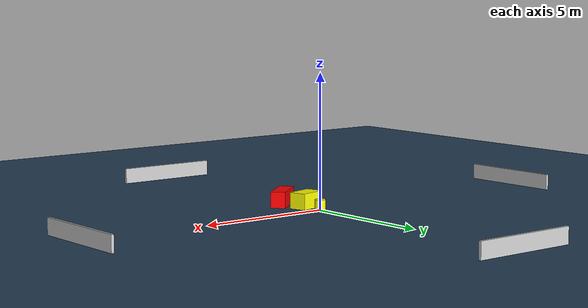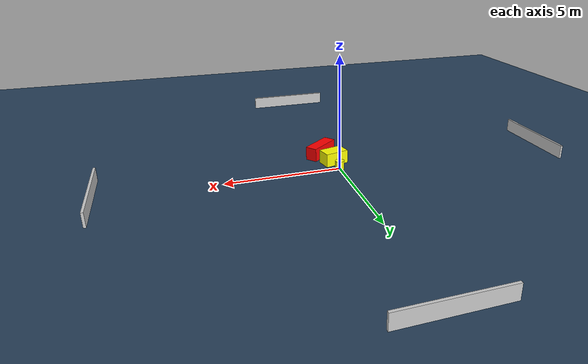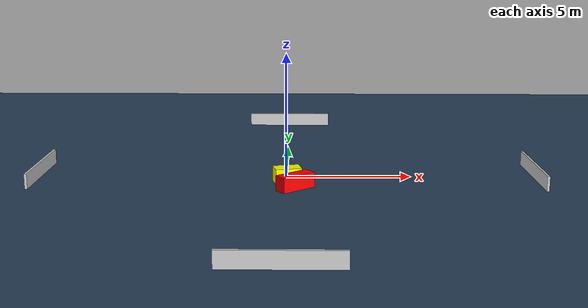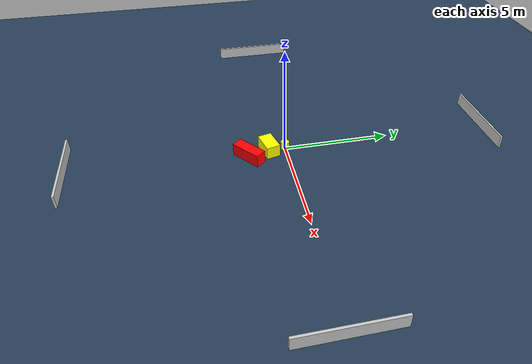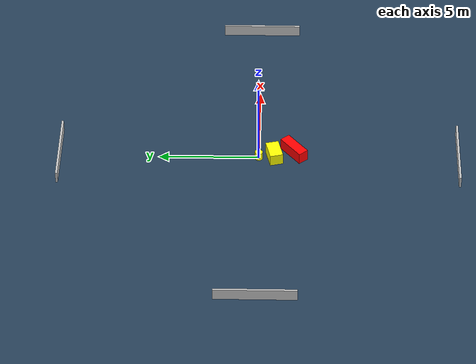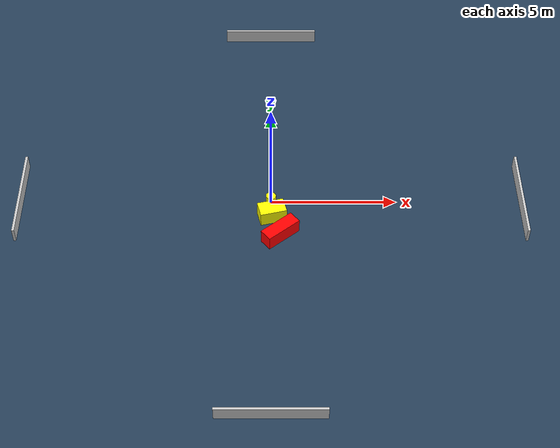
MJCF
<?xml version="1.0" ?>
<mujoco model="generated_environment">
  <option timestep="0.01" integrator="RK4" cone="elliptic"/>
  <default>
    <geom density="1"/>
  </default>
  <asset>
    <texture builtin="gradient" height="3072" name="skybox" rgb1="0.3 0.5 0.7" rgb2="0 0 0" type="skybox" width="512"/>
    <texture builtin="checker" height="300" name="groundplane" rgb1="0.2 0.3 0.4" rgb2="0.1 0.2 0.3" type="2d" width="300"/>
    <material name="groundplane" reflectance="0.2" texrepeat="5 5" texture="groundplane"/>
  </asset>
  <worldbody>
    <light dir="0 0 -1" directional="true" pos="0 0 1.5"/>
    <geom condim="3" friction="0.5 0.005 0.001" material="groundplane" name="floor" pos="0 0 0" size="0 0 0.05" type="plane"/>
    <body name="walls">
      <geom name="wall_1" condim="4" pos="-10.0 0.0 0.3" rgba="0.800000011920929 0.800000011920929 0.800000011920929 1.0" size="0.05 2.0 0.3" type="box"/>
      <geom name="wall_2" condim="4" pos="10.0 0.0 0.3" rgba="0.800000011920929 0.800000011920929 0.800000011920929 1.0" size="0.05 2.0 0.3" type="box"/>
      <geom name="wall_3" condim="4" pos="0.0 -10.0 0.3" rgba="0.800000011920929 0.800000011920929 0.800000011920929 1.0" size="2.0 0.05 0.3" type="box"/>
      <geom name="wall_4" condim="4" pos="0.0 10.0 0.3" rgba="0.800000011920929 0.800000011920929 0.800000011920929 1.0" size="2.0 0.05 0.3" type="box"/>
    </body>
    <body name="robot">
      <joint name="joint_x" type="slide" pos="0 0 0" axis="1 0 0"/>
      <joint name="joint_y" type="slide" pos="0 0 0" axis="0 1 0"/>
      <geom name="robot" type="cylinder" pos="0.0 0.0 0.2" size="0.2 0.2 0.0" mass="5.0" friction="1.0 0.005 0.0001" condim="4" rgba="1.0 1.0 0.0 1.0"/>
    </body>
    <body name="obstacle_1_movable">
      <geom name="obstacle_1_movable" condim="4" pos="0.038762166205944776 -0.7716101360189246 0.3" euler="0 0 103.8370286704802" friction="0.0 0.005 0.001" rgba="1.0 1.0 0.0 1.0" size="0.3289699446027975 0.5299207520103681 0.3" type="box" mass="0.1"/>
      <joint type="free"/>
    </body>
    <body name="obstacle_2_static">
      <geom name="obstacle_2_static" condim="4" pos="0.35965444139260694 -1.7644014303323232 0.3" euler="0 0 309.2627768157571" friction="0.0 0.005 0.001" rgba="1.0 0.0 0.0 1.0" size="0.26782535353452175 0.7502086696730628 0.3" type="box"/>
    </body>
  </worldbody>
  <actuator>
    <motor name="actuator_x" joint="joint_x" gear="1" ctrlrange="-1 1"/>
    <motor name="actuator_y" joint="joint_y" gear="1" ctrlrange="-1 1"/>
  </actuator>
</mujoco>
